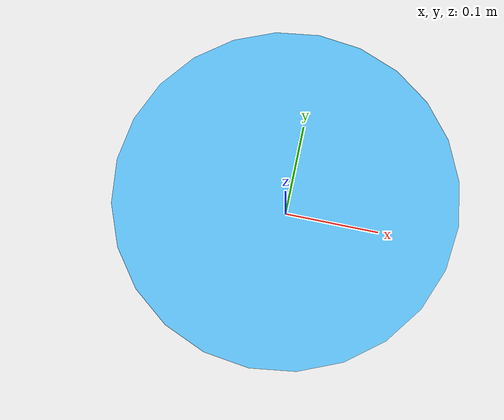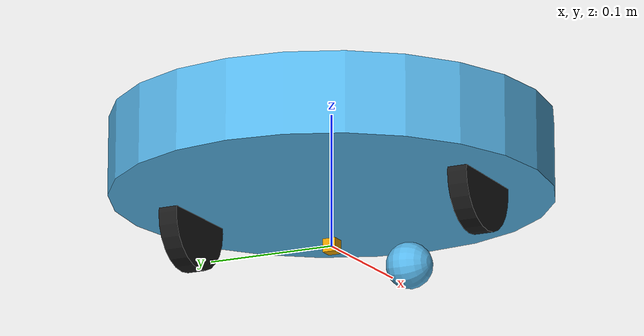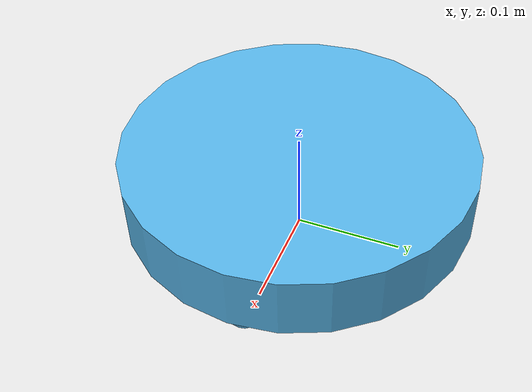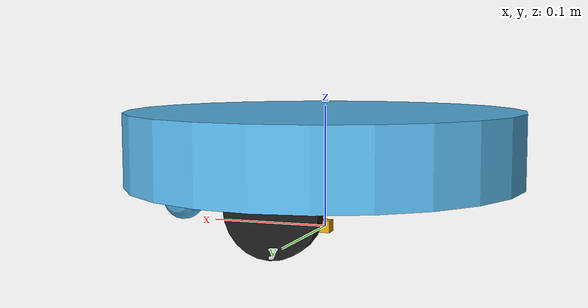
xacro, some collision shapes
<?xml version="1.0" ?>
<robot name="create_2" xmlns:xacro="http://ros.org/wiki/xacro">
	<xacro:include filename="create_sim_base.urdf.xacro" />

  <xacro:create_base wheel_separation="0.235" base_diameter="0.3485">
    <mesh filename="package://mock_description/meshes/create_2.dae" />
  </xacro:create_base>
</robot>

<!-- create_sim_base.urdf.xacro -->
<robot xmlns:xacro="http://ros.org/wiki/xacro">
  <xacro:include filename="common_macros.urdf.xacro" />
  <xacro:property name="PI" value="3.1415926535897931" />

  <xacro:property name="body_z_offset"           value="${-2.5*cm2m}" />
  <xacro:property name="body_collision_z_offset" value="${1*cm2m}" />
  <xacro:property name="body_mass"               value="2.300" />
  <xacro:property name="body_radius"             value="${16.4*cm2m}" />
  <xacro:property name="body_length"             value="${6*cm2m}" />
  <xacro:property name="body_cog_x_offset"       value="${2.28*cm2m}" />
  <xacro:property name="base_link_z_offset"      value="${6.42*cm2m}"/>
  <xacro:property name="wheel_mass"              value="0.2" />

  <xacro:macro name="create_wheel" params="prefix y_offset wheel_radius wheel_width">
    <link name="${prefix}_wheel_link">

    <visual>
      <origin xyz="0 0 0" rpy="0 ${PI/2} ${PI/2}" />
      <geometry>
        <cylinder radius="${wheel_radius}" length="${wheel_width}" />
      </geometry>
      <xacro:insert_block name="material_black"/>
    </visual>

    <collision>
      <origin xyz="0 0 0" rpy="0 ${PI/2} ${PI/2}" />
      <geometry>
        <cylinder radius="${wheel_radius}" length="${wheel_width}" />
      </geometry>
    </collision>
    <xacro:inertial_cylinder mass="${wheel_mass}" radius="${wheel_radius}"
      length="${wheel_width}" />
    </link>

   <joint name="${prefix}_wheel_joint" type="continuous">
      <origin xyz="0 ${y_offset} 0.015" rpy="0 0 0" />
      <parent link="base_link" />
      <child link="${prefix}_wheel_link" />
      <axis xyz="0 1 0" />
    </joint>
  </xacro:macro>

  <xacro:macro name="create_base" params="wheel_separation wheel_radius:=0.036 wheel_width:=0.015 wheel_torque:=1.0 wheel_accel:=1.8 base_diameter *mesh">

   <link name="base_footprint">
      <inertial>
        <mass value="1.0"/>
        <origin xyz="0 0 0" rpy="0 0 0"/>
        <inertia ixx="0.1" ixy="0.0" ixz="0.0" iyy="0.1" iyz="0.0" izz="0.1"/>
      </inertial>

    <visual>
      <origin xyz="0 0 0" rpy="0 0 0" />
      <geometry>
        <box size="0.01 0.01 0.01" />
      </geometry>
    </visual>

    <collision>
      <origin xyz="0 0 0.017" rpy="0 0 0" />
      <geometry>
        <box size="0.001 0.001 0.001" />
      </geometry>
    </collision>
   </link>

   <link name="base_link">
      <inertial>
        <mass value="2.061" />
	<origin xyz="0.003 -0.0005 0.0004" rpy="0 0 0" />
	<inertia ixx="0.05" ixy="0" ixz="0" iyy="0.05" iyz="0" izz="0.08" />
      </inertial>

    <visual>
      <origin xyz="0 0 ${body_z_offset + base_link_z_offset}" rpy="0 0 ${pi/2}"/>
      <geometry>
        <xacro:insert_block name="mesh" />
      </geometry>
    </visual>

    <collision name="create2_base_collision">
      <origin xyz="0 0 ${body_z_offset + body_collision_z_offset  + base_link_z_offset}" rpy="0 0 ${pi/2}"/>
      <geometry>
        <cylinder length="${body_length}" radius="${body_radius}"/>
      </geometry>
    </collision>
    <xacro:inertial_cylinder_with_pose mass="${body_mass}" radius="${body_radius}" length="${body_length}">
      <origin xyz="${body_cog_x_offset} 0 ${body_collision_z_offset + base_link_z_offset}"/>
    </xacro:inertial_cylinder_with_pose>
    </link>

    <link name="wall_sensor_link">
    <inertial>
      <mass value="0.01" />
      <origin xyz="0 0 0" />
      <inertia ixx="0.001" ixy="0.0" ixz="0.0" iyy="0.001" iyz="0.0" izz="0.001" />
    </inertial>
    </link>

    <link name="left_cliff_sensor_link">
    <inertial>
      <mass value="0.01" />
      <origin xyz="0 0 0" />
      <inertia ixx="0.001" ixy="0.0" ixz="0.0" iyy="0.001" iyz="0.0" izz="0.001" />
    </inertial>
    </link>

    <link name="right_cliff_sensor_link">
    <inertial>
      <mass value="0.01" />
      <origin xyz="0 0 0" />
      <inertia ixx="0.001" ixy="0.0" ixz="0.0" iyy="0.001" iyz="0.0" izz="0.001" />
    </inertial>
    </link>

    <link name="leftfront_cliff_sensor_link">
    <inertial>
      <mass value="0.01" />
      <origin xyz="0 0 0" />
      <inertia ixx="0.001" ixy="0.0" ixz="0.0" iyy="0.001" iyz="0.0" izz="0.001" />
    </inertial>
    </link>

    <link name="rightfront_cliff_sensor_link">
    <inertial>
      <mass value="0.01" />
      <origin xyz="0 0 0" />
      <inertia ixx="0.001" ixy="0.0" ixz="0.0" iyy="0.001" iyz="0.0" izz="0.001" />
    </inertial>
    </link>

    <joint name="base_footprint_joint" type="fixed">
      <origin xyz="0 0 0.017" rpy="0 0 0" />
      <parent link="base_footprint" />
      <child link="base_link" />
    </joint>

    <joint name="base_wall_sensor_joint" type="fixed">
      <origin xyz="0.09 -0.120 0.042" rpy="0 0 -1.0" />
      <parent link="base_link" />
      <child link="wall_sensor_link" />
    </joint>

    <joint name="base_left_cliff_sensor_joint" type="fixed">
      <origin xyz="0.07 0.14 0.01" rpy="0 ${PI/2} 0" />
      <parent link="base_link" />
      <child link="left_cliff_sensor_link" />
    </joint>

    <joint name="base_right_cliff_sensor_joint" type="fixed">
      <origin xyz="0.07 -0.14 0.01" rpy="0 ${PI/2} 0" />
      <parent link="base_link" />
      <child link="right_cliff_sensor_link" />
    </joint>

    <joint name="base_leftfront_cliff_sensor_joint" type="fixed">
      <origin xyz="0.15 0.04 0.01" rpy="0 ${PI/2} 0" />
      <parent link="base_link" />
      <child link="leftfront_cliff_sensor_link" />
    </joint>

    <joint name="base_rightfront_cliff_sensor_joint" type="fixed">
      <origin xyz="0.15 -0.04 0.01" rpy="0 ${PI/2} 0" />
      <parent link="base_link" />
      <child link="rightfront_cliff_sensor_link" />
    </joint>

    <xacro:create_wheel prefix="left" y_offset="${wheel_separation / 2}" wheel_radius="${wheel_radius}" wheel_width="${wheel_width}"/>
    <xacro:create_wheel prefix="right" y_offset="${wheel_separation / -2}" wheel_radius="${wheel_radius}" wheel_width="${wheel_width}"/>

    <link name="front_wheel_link">
    <inertial>
      <origin xyz="0 0 0" />
      <mass value="0.01" />
      <inertia ixx="0.001" ixy="0.0" ixz="0.0" iyy="0.001" iyz="0.0" izz="0.001" />
    </inertial>

    <visual>
      <origin xyz="0 0 0" rpy="0 ${PI/2} ${PI/2}" />
      <geometry>
        <sphere radius="0.018" />
      </geometry>
    </visual>

    <collision>
      <origin xyz="0 0 0" rpy="0 ${PI/2} ${PI/2}" />
      <geometry>
        <sphere radius="0.018" />
      </geometry>
    </collision>
    </link>

    <!-- fixed because there's no transmission -->
    <joint name="front_castor_joint" type="fixed">
      <origin xyz="0.13 0 0.0" rpy="0 0 0" />
      <parent link="base_link" />
      <child link="front_wheel_link" />
      <axis xyz="0 1 0" />
    </joint>

    <joint name="gyro_joint" type="fixed">
      <axis xyz="0 1 0" />
      <origin xyz="0 0 0.04" rpy="0 0 0" />
      <parent link="base_link" />
      <child link="gyro_link" />
    </joint>
    <link name="gyro_link">
    <inertial>
      <mass value="0.001" />
      <origin xyz="0 0 0" rpy="0 0 0" />
      <inertia ixx="0.0001" ixy="0" ixz="0" iyy="0.000001" iyz="0" izz="0.0001" />
    </inertial>
    </link>

    <xacro:include filename="create_base_gazebo.urdf.xacro" />

    <!-- Simulation sensors -->
    <xacro:sim_create_base wheel_separation="${wheel_separation}" wheel_radius="${wheel_radius}"/>
    <xacro:sim_create_wall_sensor/>
    <xacro:sim_create_cliff_sensors/>
    <xacro:sim_imu/>
  </xacro:macro>
</robot>

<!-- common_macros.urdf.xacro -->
<!-- Various useful macros -->
<robot name="xacro_properties" xmlns:xacro="http://ros.org/wiki/xacro">

  <xacro:macro name="inertial_cuboid_with_pose" params="mass x y z *origin">
    <inertial>
      <mass value="${mass}" />
      <xacro:insert_block name="origin"/>
      <inertia ixx="${(1/12) * mass * (y*y + z*z)}" ixy="0.0" ixz="0.0"
        iyy="${(1/12) * mass * (x*x + z*z)}" iyz="0.0"
        izz="${(1/12) * mass * (x*x + y*y)}" />
    </inertial>
  </xacro:macro>

  <xacro:macro name="inertial_cuboid" params="mass x y z">
    <xacro:inertial_cuboid_with_pose mass="${mass}" x="${x}" y="${y}" z="${z}">
      <origin xyz="0 0 0" />
    </xacro:inertial_cuboid_with_pose>
  </xacro:macro>

  <xacro:macro name="inertial_cylinder_with_pose" params="mass radius length *origin">
    <inertial>
      <xacro:insert_block name="origin"/>
      <mass value="${mass}" />
      <inertia ixx="${(1/12) * mass * (3*radius*radius + length*length)}" ixy="0.0" ixz="0.0"
        iyy="${(1/12) * mass * (3*radius*radius + length*length)}" iyz="0.0"
        izz="${(1/2) * mass * (radius*radius)}" />
    </inertial>
  </xacro:macro>

  <xacro:macro name="inertial_cylinder" params="mass radius length">
    <xacro:inertial_cylinder_with_pose mass="${mass}" radius="${radius}" length="${length}">
      <origin xyz="0 0 0" />
    </xacro:inertial_cylinder_with_pose>
  </xacro:macro>

  <xacro:macro name="inertial_sphere" params="mass radius">
    <inertial>
      <mass value="${mass}" />
      <inertia ixx="${(2/5) * mass * radius * radius}" ixy="0.0" ixz="0.0"
	             iyy="${(2/5) * mass * radius * radius}" iyz="0.0"
	             izz="${(2/5) * mass * radius * radius}" />
    </inertial>
  </xacro:macro>

  <xacro:macro name="inertial_dummy">
    <xacro:inertial_cuboid mass="0.01" x="0.01" y="0.01" z="0.01"/>
  </xacro:macro>

  <xacro:macro name="ray_sensor"
    params="sensor_name gazebo update_rate visualize
            h_samples h_res h_min_angle h_max_angle
            v_samples:=1 v_res:=1 v_min_angle:=0 v_max_angle:=0
            r_min r_max r_res *plugin">
      <sensor name="${sensor_name}" type="gpu_lidar">
        <update_rate>${update_rate}</update_rate>
        <visualize>${visualize}</visualize>
        <always_on>true</always_on>
        <lidar>
          <scan>
            <horizontal>
              <samples>${h_samples}</samples>
              <resolution>${h_res}</resolution>
              <min_angle>${h_min_angle}</min_angle>
              <max_angle>${h_max_angle}</max_angle>
            </horizontal>
            <vertical>
              <samples>${v_samples}</samples>
              <resolution>${v_res}</resolution>
              <min_angle>${v_min_angle}</min_angle>
              <max_angle>${v_max_angle}</max_angle>
            </vertical>
          </scan>
          <range>
            <min>${r_min}</min>
            <max>${r_max}</max>
            <resolution>${r_res}</resolution>
          </range>
        </lidar>
      </sensor>
  </xacro:macro>

  <!-- Conversion macros -->
  <xacro:property name="cm2m"    value="${1/100.0}"/>
  <xacro:property name="mm2m"    value="${1/1000.0}"/>
  <xacro:property name="in2m"    value="0.0254"/>
  <xacro:property name="deg2rad" value="${pi/180.0}"/>

  <!-- Material colors -->
  <xacro:property name="material_black">
    <material name="black">
      <color rgba="0.1 0.1 0.1 1"/>
    </material>
  </xacro:property>

  <!-- Material macros -->
  <xacro:macro name="material_black">
    <visual>
      <material>
        <diffuse>0 0 0 1</diffuse>
        <specular>${80/255} ${80/255} ${80/255} 1</specular>
        <emissive>0 0 0 1</emissive>
      </material>
    </visual>
  </xacro:macro>

  <xacro:macro name="material_green">
    <visual>
      <material>
        <diffuse>0 1 0 1</diffuse>
        <specular>0 0 0 1</specular>
        <emissive>0 1 0 1</emissive>
      </material>
    </visual>
  </xacro:macro>

  <xacro:macro name="material_darkgray">
    <visual>
      <material>
        <diffuse>${3/255} ${3/255} ${3/255} 1</diffuse>
        <specular>0 0 0 1</specular>
        <emissive>0 0 0 1</emissive>
      </material>
    </visual>
  </xacro:macro>

</robot>
